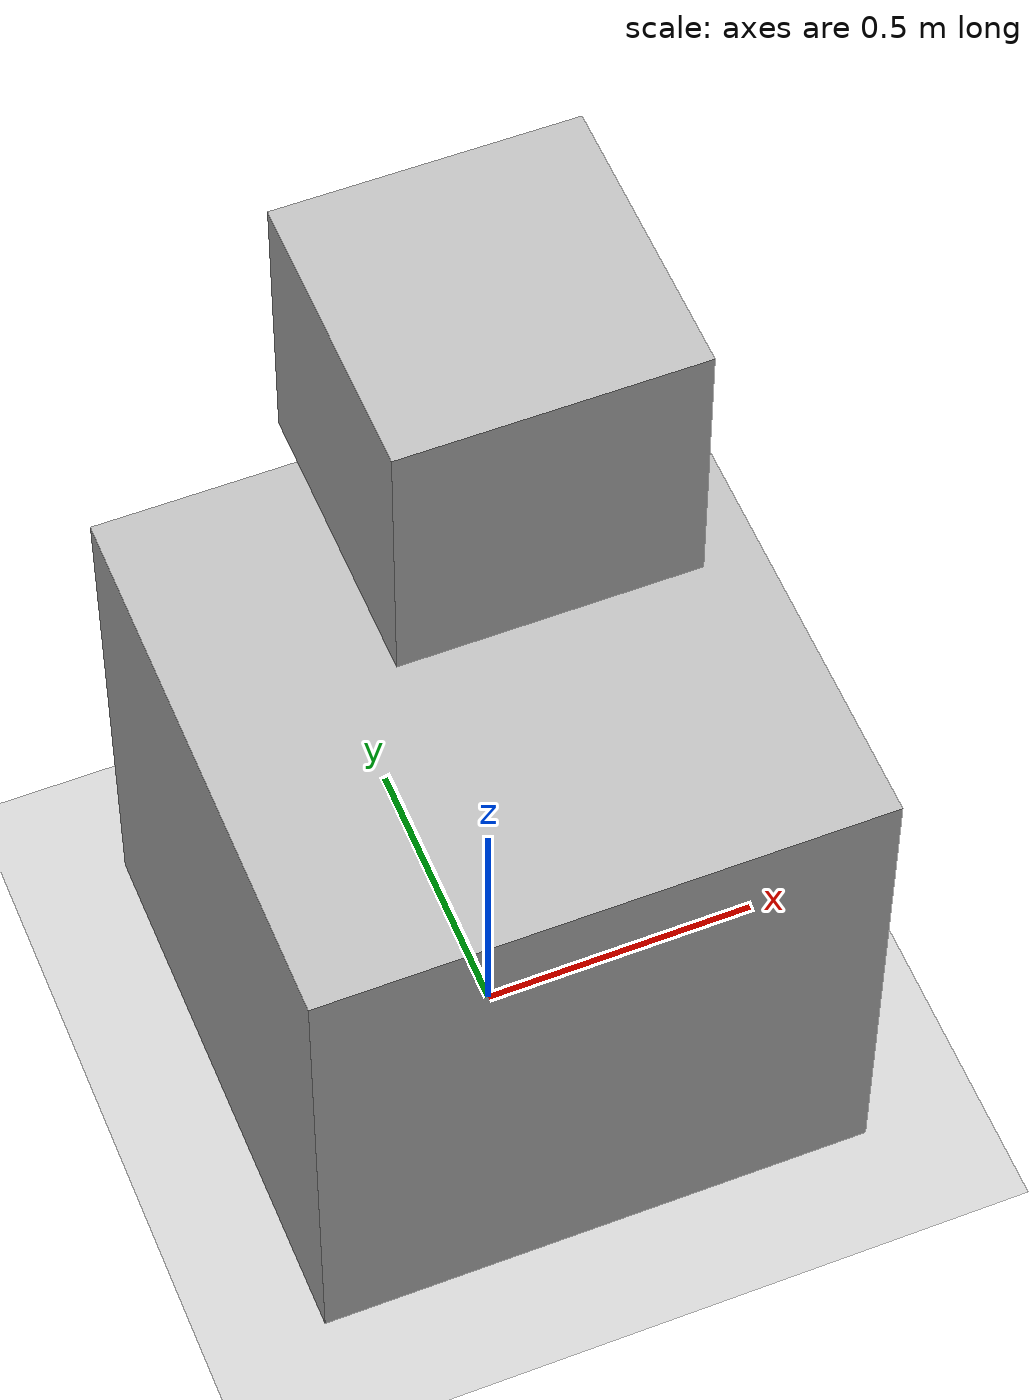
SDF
<?xml version="1.0"?>
<sdf version="1.6">
    <world name="default">
        <!-- Ground Plane -->
        <include>
            <uri>model://ground_plane</uri>
        </include>

        <!-- Sun -->
        <include>
            <uri>model://sun</uri>
        </include>

        <!-- Box Model with Joint -->
        <model name="box_model">
            <pose>0 0 0.5 0 0 0</pose>

            <!-- Link 1 -->
            <link name="link1">
                <pose>0 0 0 0 0 0</pose>
                <collision name="collision1">
                    <geometry>
                        <box>
                            <size>1 1 1</size>
                        </box>
                    </geometry>
                </collision>
                <visual name="visual1">
                    <geometry>
                        <box>
                            <size>1 1 1</size>
                        </box>
                    </geometry>
                </visual>
            </link>

            <!-- Link 2 -->
            <link name="link2">
                <pose>0 0 1.2 0 0 0</pose>
                <collision name="collision2">
                    <geometry>
                        <box>
                            <size>0.5 0.5 0.5</size>
                        </box>
                    </geometry>
                </collision>
                <visual name="visual2">
                    <geometry>
                        <box>
                            <size>0.5 0.5 0.5</size>
                        </box>
                    </geometry>
                </visual>
            </link>

            <!-- Joint -->
            <joint name="joint1" type="revolute">
                <parent>link1</parent>
                <child>link2</child>
                <origin xyz="0 0 1.2" />
                <axis>
                    <xyz>0 0 1</xyz>
                </axis>
            </joint>

            <!-- Plugin to Control Joint -->
            <plugin name="FixedJointVelocity" filename="libFixedJointVelocity.so">
                <jointName>joint1</jointName>
                <velocity>0.5</velocity>
            </plugin>
        </model>
    </world>
</sdf>
